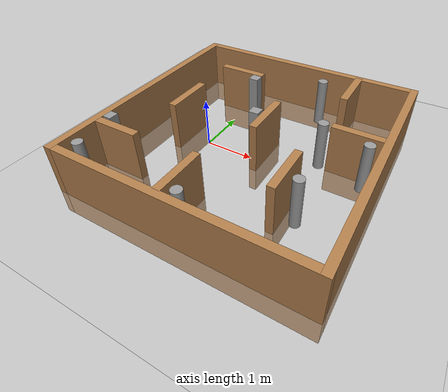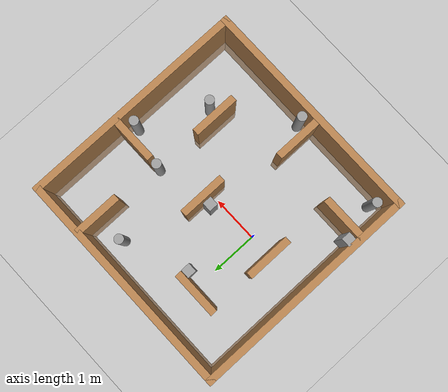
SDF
<sdf version='1.4'>
  <world name='default'>
    <!-- A global light source -->
    <include>
      <uri>model://sun</uri>
    </include>

    <!-- A ground plane -->
    <include>
      <uri>model://ground_plane</uri>
    </include>

    <physics type="ode">
      <real_time_update_rate>1000.0</real_time_update_rate>
      <max_step_size>0.001</max_step_size>
      <real_time_factor>1</real_time_factor>
      <ode>
        <solver>
          <type>quick</type>
          <iters>150</iters>
          <precon_iters>0</precon_iters>
          <sor>1.400000</sor>
          <use_dynamic_moi_rescaling>1</use_dynamic_moi_rescaling>
        </solver>
        <constraints>
          <cfm>0.00001</cfm>
          <erp>0.2</erp>
          <contact_max_correcting_vel>2000.000000</contact_max_correcting_vel>
          <contact_surface_layer>0.01000</contact_surface_layer>
        </constraints>
      </ode>
    </physics>

    <!-- Load world -->
    <include>
      <uri>model://my_plaza_edited</uri>
      <pose>1 0 0 0 0 0</pose>
    </include>

    <scene>
      <ambient>0.4 0.4 0.4 1</ambient>
      <background>0.7 0.7 0.7 1</background>
      <shadows>true</shadows>
    </scene>

    <gui fullscreen='0'>
      <camera name='user_camera'>
        <pose>0.8 0.0 12.0 0 1.5708 0</pose>
        <view_controller>orbit</view_controller>
      </camera>
    </gui>
  </world>
</sdf>

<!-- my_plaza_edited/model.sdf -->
<sdf version='1.7'>
  <model name='my_plaza(edited)'>
    <link name='Wall_0'>
      <pose>-2.425 0 0 0 -0 1.5708</pose>
      <self_collide>0</self_collide>
      <enable_wind>0</enable_wind>
      <kinematic>0</kinematic>
      <visual name='Wall_0_Visual'>
        <pose>0 0 0.25 0 -0 0</pose>
        <geometry>
          <box>
            <size>5 0.15 1.5</size>
          </box>
        </geometry>
        <material>
          <script>
            <uri>file://media/materials/scripts/gazebo.material</uri>
            <name>Gazebo/Wood</name>
          </script>
          <ambient>1 1 1 1</ambient>
          <shader type='pixel'/>
        </material>
        <transparency>0</transparency>
        <cast_shadows>1</cast_shadows>
      </visual>
      <collision name='Wall_0_Collision'>
        <laser_retro>0</laser_retro>
        <max_contacts>10</max_contacts>
        <pose>0 0 0.25 0 -0 0</pose>
        <geometry>
          <box>
            <size>5 0.15 1.5</size>
          </box>
        </geometry>
        <surface>
          <friction>
            <ode>
              <mu>1</mu>
              <mu2>1</mu2>
              <fdir1>0 0 0</fdir1>
              <slip1>0</slip1>
              <slip2>0</slip2>
            </ode>
            <torsional>
              <coefficient>1</coefficient>
              <patch_radius>0</patch_radius>
              <surface_radius>0</surface_radius>
              <use_patch_radius>1</use_patch_radius>
              <ode>
                <slip>0</slip>
              </ode>
            </torsional>
          </friction>
          <bounce>
            <restitution_coefficient>0</restitution_coefficient>
            <threshold>1e+06</threshold>
          </bounce>
          <contact>
            <collide_without_contact>0</collide_without_contact>
            <collide_without_contact_bitmask>1</collide_without_contact_bitmask>
            <collide_bitmask>1</collide_bitmask>
            <ode>
              <soft_cfm>0</soft_cfm>
              <soft_erp>0.2</soft_erp>
              <kp>1e+13</kp>
              <kd>1</kd>
              <max_vel>0.01</max_vel>
              <min_depth>0</min_depth>
            </ode>
            <bullet>
              <split_impulse>1</split_impulse>
              <split_impulse_penetration_threshold>-0.01</split_impulse_penetration_threshold>
              <soft_cfm>0</soft_cfm>
              <soft_erp>0.2</soft_erp>
              <kp>1e+13</kp>
              <kd>1</kd>
            </bullet>
          </contact>
        </surface>
      </collision>
    </link>
    <link name='Wall_11'>
      <pose>-1.937 -1.467 0 0 -0 0</pose>
      <self_collide>0</self_collide>
      <enable_wind>0</enable_wind>
      <kinematic>0</kinematic>
      <visual name='Wall_11_Visual'>
        <pose>0 0 0.25 0 -0 0</pose>
        <geometry>
          <box>
            <size>1 0.15 1.5</size>
          </box>
        </geometry>
        <material>
          <script>
            <uri>file://media/materials/scripts/gazebo.material</uri>
            <name>Gazebo/Wood</name>
          </script>
          <ambient>1 1 1 1</ambient>
          <shader type='pixel'/>
        </material>
        <transparency>0</transparency>
        <cast_shadows>1</cast_shadows>
      </visual>
      <collision name='Wall_11_Collision'>
        <laser_retro>0</laser_retro>
        <max_contacts>10</max_contacts>
        <pose>0 0 0.25 0 -0 0</pose>
        <geometry>
          <box>
            <size>1 0.15 1.5</size>
          </box>
        </geometry>
        <surface>
          <friction>
            <ode>
              <mu>1</mu>
              <mu2>1</mu2>
              <fdir1>0 0 0</fdir1>
              <slip1>0</slip1>
              <slip2>0</slip2>
            </ode>
            <torsional>
              <coefficient>1</coefficient>
              <patch_radius>0</patch_radius>
              <surface_radius>0</surface_radius>
              <use_patch_radius>1</use_patch_radius>
              <ode>
                <slip>0</slip>
              </ode>
            </torsional>
          </friction>
          <bounce>
            <restitution_coefficient>0</restitution_coefficient>
            <threshold>1e+06</threshold>
          </bounce>
          <contact>
            <collide_without_contact>0</collide_without_contact>
            <collide_without_contact_bitmask>1</collide_without_contact_bitmask>
            <collide_bitmask>1</collide_bitmask>
            <ode>
              <soft_cfm>0</soft_cfm>
              <soft_erp>0.2</soft_erp>
              <kp>1e+13</kp>
              <kd>1</kd>
              <max_vel>0.01</max_vel>
              <min_depth>0</min_depth>
            </ode>
            <bullet>
              <split_impulse>1</split_impulse>
              <split_impulse_penetration_threshold>-0.01</split_impulse_penetration_threshold>
              <soft_cfm>0</soft_cfm>
              <soft_erp>0.2</soft_erp>
              <kp>1e+13</kp>
              <kd>1</kd>
            </bullet>
          </contact>
        </surface>
      </collision>
    </link>
    <link name='Wall_13'>
      <pose>-0.22 -1.866 0 0 0 -1.5708</pose>
      <self_collide>0</self_collide>
      <enable_wind>0</enable_wind>
      <kinematic>0</kinematic>
      <visual name='Wall_13_Visual'>
        <pose>0 0 0.25 0 -0 0</pose>
        <geometry>
          <box>
            <size>1 0.15 1.5</size>
          </box>
        </geometry>
        <material>
          <script>
            <uri>file://media/materials/scripts/gazebo.material</uri>
            <name>Gazebo/Wood</name>
          </script>
          <ambient>1 1 1 1</ambient>
          <shader type='pixel'/>
        </material>
        <transparency>0</transparency>
        <cast_shadows>1</cast_shadows>
      </visual>
      <collision name='Wall_13_Collision'>
        <laser_retro>0</laser_retro>
        <max_contacts>10</max_contacts>
        <pose>0 0 0.25 0 -0 0</pose>
        <geometry>
          <box>
            <size>1 0.15 1.5</size>
          </box>
        </geometry>
        <surface>
          <friction>
            <ode>
              <mu>1</mu>
              <mu2>1</mu2>
              <fdir1>0 0 0</fdir1>
              <slip1>0</slip1>
              <slip2>0</slip2>
            </ode>
            <torsional>
              <coefficient>1</coefficient>
              <patch_radius>0</patch_radius>
              <surface_radius>0</surface_radius>
              <use_patch_radius>1</use_patch_radius>
              <ode>
                <slip>0</slip>
              </ode>
            </torsional>
          </friction>
          <bounce>
            <restitution_coefficient>0</restitution_coefficient>
            <threshold>1e+06</threshold>
          </bounce>
          <contact>
            <collide_without_contact>0</collide_without_contact>
            <collide_without_contact_bitmask>1</collide_without_contact_bitmask>
            <collide_bitmask>1</collide_bitmask>
            <ode>
              <soft_cfm>0</soft_cfm>
              <soft_erp>0.2</soft_erp>
              <kp>1e+13</kp>
              <kd>1</kd>
              <max_vel>0.01</max_vel>
              <min_depth>0</min_depth>
            </ode>
            <bullet>
              <split_impulse>1</split_impulse>
              <split_impulse_penetration_threshold>-0.01</split_impulse_penetration_threshold>
              <soft_cfm>0</soft_cfm>
              <soft_erp>0.2</soft_erp>
              <kp>1e+13</kp>
              <kd>1</kd>
            </bullet>
          </contact>
        </surface>
      </collision>
    </link>
    <link name='Wall_15'>
      <pose>1.195 -1.002 0 0 -0 1.5708</pose>
      <self_collide>0</self_collide>
      <enable_wind>0</enable_wind>
      <kinematic>0</kinematic>
      <visual name='Wall_15_Visual'>
        <pose>0 0 0.25 0 -0 0</pose>
        <geometry>
          <box>
            <size>1 0.15 1.5</size>
          </box>
        </geometry>
        <material>
          <script>
            <uri>file://media/materials/scripts/gazebo.material</uri>
            <name>Gazebo/Wood</name>
          </script>
          <ambient>1 1 1 1</ambient>
          <shader type='pixel'/>
        </material>
        <transparency>0</transparency>
        <cast_shadows>1</cast_shadows>
      </visual>
      <collision name='Wall_15_Collision'>
        <laser_retro>0</laser_retro>
        <max_contacts>10</max_contacts>
        <pose>0 0 0.25 0 -0 0</pose>
        <geometry>
          <box>
            <size>1 0.15 1.5</size>
          </box>
        </geometry>
        <surface>
          <friction>
            <ode>
              <mu>1</mu>
              <mu2>1</mu2>
              <fdir1>0 0 0</fdir1>
              <slip1>0</slip1>
              <slip2>0</slip2>
            </ode>
            <torsional>
              <coefficient>1</coefficient>
              <patch_radius>0</patch_radius>
              <surface_radius>0</surface_radius>
              <use_patch_radius>1</use_patch_radius>
              <ode>
                <slip>0</slip>
              </ode>
            </torsional>
          </friction>
          <bounce>
            <restitution_coefficient>0</restitution_coefficient>
            <threshold>1e+06</threshold>
          </bounce>
          <contact>
            <collide_without_contact>0</collide_without_contact>
            <collide_without_contact_bitmask>1</collide_without_contact_bitmask>
            <collide_bitmask>1</collide_bitmask>
            <ode>
              <soft_cfm>0</soft_cfm>
              <soft_erp>0.2</soft_erp>
              <kp>1e+13</kp>
              <kd>1</kd>
              <max_vel>0.01</max_vel>
              <min_depth>0</min_depth>
            </ode>
            <bullet>
              <split_impulse>1</split_impulse>
              <split_impulse_penetration_threshold>-0.01</split_impulse_penetration_threshold>
              <soft_cfm>0</soft_cfm>
              <soft_erp>0.2</soft_erp>
              <kp>1e+13</kp>
              <kd>1</kd>
            </bullet>
          </contact>
        </surface>
      </collision>
    </link>
    <link name='Wall_17'>
      <pose>1.288 1.93 0 0 0 -1.5708</pose>
      <self_collide>0</self_collide>
      <enable_wind>0</enable_wind>
      <kinematic>0</kinematic>
      <visual name='Wall_17_Visual'>
        <pose>0 0 0.25 0 -0 0</pose>
        <geometry>
          <box>
            <size>1 0.15 1.5</size>
          </box>
        </geometry>
        <material>
          <script>
            <uri>file://media/materials/scripts/gazebo.material</uri>
            <name>Gazebo/Wood</name>
          </script>
          <ambient>1 1 1 1</ambient>
          <shader type='pixel'/>
        </material>
        <transparency>0</transparency>
        <cast_shadows>1</cast_shadows>
      </visual>
      <collision name='Wall_17_Collision'>
        <laser_retro>0</laser_retro>
        <max_contacts>10</max_contacts>
        <pose>0 0 0.25 0 -0 0</pose>
        <geometry>
          <box>
            <size>1 0.15 1.5</size>
          </box>
        </geometry>
        <surface>
          <friction>
            <ode>
              <mu>1</mu>
              <mu2>1</mu2>
              <fdir1>0 0 0</fdir1>
              <slip1>0</slip1>
              <slip2>0</slip2>
            </ode>
            <torsional>
              <coefficient>1</coefficient>
              <patch_radius>0</patch_radius>
              <surface_radius>0</surface_radius>
              <use_patch_radius>1</use_patch_radius>
              <ode>
                <slip>0</slip>
              </ode>
            </torsional>
          </friction>
          <bounce>
            <restitution_coefficient>0</restitution_coefficient>
            <threshold>1e+06</threshold>
          </bounce>
          <contact>
            <collide_without_contact>0</collide_without_contact>
            <collide_without_contact_bitmask>1</collide_without_contact_bitmask>
            <collide_bitmask>1</collide_bitmask>
            <ode>
              <soft_cfm>0</soft_cfm>
              <soft_erp>0.2</soft_erp>
              <kp>1e+13</kp>
              <kd>1</kd>
              <max_vel>0.01</max_vel>
              <min_depth>0</min_depth>
            </ode>
            <bullet>
              <split_impulse>1</split_impulse>
              <split_impulse_penetration_threshold>-0.01</split_impulse_penetration_threshold>
              <soft_cfm>0</soft_cfm>
              <soft_erp>0.2</soft_erp>
              <kp>1e+13</kp>
              <kd>1</kd>
            </bullet>
          </contact>
        </surface>
      </collision>
    </link>
    <link name='Wall_19'>
      <pose>1.91128 0.4632 0 0 -0 0</pose>
      <self_collide>0</self_collide>
      <enable_wind>0</enable_wind>
      <kinematic>0</kinematic>
      <visual name='Wall_19_Visual'>
        <pose>0 0 0.25 0 -0 0</pose>
        <geometry>
          <box>
            <size>1 0.15 1.5</size>
          </box>
        </geometry>
        <material>
          <script>
            <uri>file://media/materials/scripts/gazebo.material</uri>
            <name>Gazebo/Wood</name>
          </script>
          <ambient>1 1 1 1</ambient>
          <shader type='pixel'/>
        </material>
        <transparency>0</transparency>
        <cast_shadows>1</cast_shadows>
      </visual>
      <collision name='Wall_19_Collision'>
        <laser_retro>0</laser_retro>
        <max_contacts>10</max_contacts>
        <pose>0 0 0.25 0 -0 0</pose>
        <geometry>
          <box>
            <size>1 0.15 1.5</size>
          </box>
        </geometry>
        <surface>
          <friction>
            <ode>
              <mu>1</mu>
              <mu2>1</mu2>
              <fdir1>0 0 0</fdir1>
              <slip1>0</slip1>
              <slip2>0</slip2>
            </ode>
            <torsional>
              <coefficient>1</coefficient>
              <patch_radius>0</patch_radius>
              <surface_radius>0</surface_radius>
              <use_patch_radius>1</use_patch_radius>
              <ode>
                <slip>0</slip>
              </ode>
            </torsional>
          </friction>
          <bounce>
            <restitution_coefficient>0</restitution_coefficient>
            <threshold>1e+06</threshold>
          </bounce>
          <contact>
            <collide_without_contact>0</collide_without_contact>
            <collide_without_contact_bitmask>1</collide_without_contact_bitmask>
            <collide_bitmask>1</collide_bitmask>
            <ode>
              <soft_cfm>0</soft_cfm>
              <soft_erp>0.2</soft_erp>
              <kp>1e+13</kp>
              <kd>1</kd>
              <max_vel>0.01</max_vel>
              <min_depth>0</min_depth>
            </ode>
            <bullet>
              <split_impulse>1</split_impulse>
              <split_impulse_penetration_threshold>-0.01</split_impulse_penetration_threshold>
              <soft_cfm>0</soft_cfm>
              <soft_erp>0.2</soft_erp>
              <kp>1e+13</kp>
              <kd>1</kd>
            </bullet>
          </contact>
        </surface>
      </collision>
    </link>
    <link name='Wall_2'>
      <pose>0 2.425 0 0 -0 0</pose>
      <self_collide>0</self_collide>
      <enable_wind>0</enable_wind>
      <kinematic>0</kinematic>
      <visual name='Wall_2_Visual'>
        <pose>0 0 0.25 0 -0 0</pose>
        <geometry>
          <box>
            <size>5 0.15 1.5</size>
          </box>
        </geometry>
        <material>
          <script>
            <uri>file://media/materials/scripts/gazebo.material</uri>
            <name>Gazebo/Wood</name>
          </script>
          <ambient>1 1 1 1</ambient>
          <shader type='pixel'/>
        </material>
        <transparency>0</transparency>
        <cast_shadows>1</cast_shadows>
      </visual>
      <collision name='Wall_2_Collision'>
        <laser_retro>0</laser_retro>
        <max_contacts>10</max_contacts>
        <pose>0 0 0.25 0 -0 0</pose>
        <geometry>
          <box>
            <size>5 0.15 1.5</size>
          </box>
        </geometry>
        <surface>
          <friction>
            <ode>
              <mu>1</mu>
              <mu2>1</mu2>
              <fdir1>0 0 0</fdir1>
              <slip1>0</slip1>
              <slip2>0</slip2>
            </ode>
            <torsional>
              <coefficient>1</coefficient>
              <patch_radius>0</patch_radius>
              <surface_radius>0</surface_radius>
              <use_patch_radius>1</use_patch_radius>
              <ode>
                <slip>0</slip>
              </ode>
            </torsional>
          </friction>
          <bounce>
            <restitution_coefficient>0</restitution_coefficient>
            <threshold>1e+06</threshold>
          </bounce>
          <contact>
            <collide_without_contact>0</collide_without_contact>
            <collide_without_contact_bitmask>1</collide_without_contact_bitmask>
            <collide_bitmask>1</collide_bitmask>
            <ode>
              <soft_cfm>0</soft_cfm>
              <soft_erp>0.2</soft_erp>
              <kp>1e+13</kp>
              <kd>1</kd>
              <max_vel>0.01</max_vel>
              <min_depth>0</min_depth>
            </ode>
            <bullet>
              <split_impulse>1</split_impulse>
              <split_impulse_penetration_threshold>-0.01</split_impulse_penetration_threshold>
              <soft_cfm>0</soft_cfm>
              <soft_erp>0.2</soft_erp>
              <kp>1e+13</kp>
              <kd>1</kd>
            </bullet>
          </contact>
        </surface>
      </collision>
    </link>
    <link name='Wall_21'>
      <pose>0.204 0.215 0 0 0 -1.5708</pose>
      <self_collide>0</self_collide>
      <enable_wind>0</enable_wind>
      <kinematic>0</kinematic>
      <visual name='Wall_21_Visual'>
        <pose>0 0 0.25 0 -0 0</pose>
        <geometry>
          <box>
            <size>1 0.15 1.5</size>
          </box>
        </geometry>
        <material>
          <script>
            <uri>file://media/materials/scripts/gazebo.material</uri>
            <name>Gazebo/Wood</name>
          </script>
          <ambient>1 1 1 1</ambient>
          <shader type='pixel'/>
        </material>
        <transparency>0</transparency>
        <cast_shadows>1</cast_shadows>
      </visual>
      <collision name='Wall_21_Collision'>
        <laser_retro>0</laser_retro>
        <max_contacts>10</max_contacts>
        <pose>0 0 0.25 0 -0 0</pose>
        <geometry>
          <box>
            <size>1 0.15 1.5</size>
          </box>
        </geometry>
        <surface>
          <friction>
            <ode>
              <mu>1</mu>
              <mu2>1</mu2>
              <fdir1>0 0 0</fdir1>
              <slip1>0</slip1>
              <slip2>0</slip2>
            </ode>
            <torsional>
              <coefficient>1</coefficient>
              <patch_radius>0</patch_radius>
              <surface_radius>0</surface_radius>
              <use_patch_radius>1</use_patch_radius>
              <ode>
                <slip>0</slip>
              </ode>
            </torsional>
          </friction>
          <bounce>
            <restitution_coefficient>0</restitution_coefficient>
            <threshold>1e+06</threshold>
          </bounce>
          <contact>
            <collide_without_contact>0</collide_without_contact>
            <collide_without_contact_bitmask>1</collide_without_contact_bitmask>
            <collide_bitmask>1</collide_bitmask>
            <ode>
              <soft_cfm>0</soft_cfm>
              <soft_erp>0.2</soft_erp>
              <kp>1e+13</kp>
              <kd>1</kd>
              <max_vel>0.01</max_vel>
              <min_depth>0</min_depth>
            </ode>
            <bullet>
              <split_impulse>1</split_impulse>
              <split_impulse_penetration_threshold>-0.01</split_impulse_penetration_threshold>
              <soft_cfm>0</soft_cfm>
              <soft_erp>0.2</soft_erp>
              <kp>1e+13</kp>
              <kd>1</kd>
            </bullet>
          </contact>
        </surface>
      </collision>
    </link>
    <link name='Wall_3'>
      <pose>2.425 0 0 0 0 -1.5708</pose>
      <self_collide>0</self_collide>
      <enable_wind>0</enable_wind>
      <kinematic>0</kinematic>
      <visual name='Wall_3_Visual'>
        <pose>0 0 0.25 0 -0 0</pose>
        <geometry>
          <box>
            <size>5 0.15 1.5</size>
          </box>
        </geometry>
        <material>
          <script>
            <uri>file://media/materials/scripts/gazebo.material</uri>
            <name>Gazebo/Wood</name>
          </script>
          <ambient>1 1 1 1</ambient>
          <shader type='pixel'/>
        </material>
        <transparency>0</transparency>
        <cast_shadows>1</cast_shadows>
      </visual>
      <collision name='Wall_3_Collision'>
        <laser_retro>0</laser_retro>
        <max_contacts>10</max_contacts>
        <pose>0 0 0.25 0 -0 0</pose>
        <geometry>
          <box>
            <size>5 0.15 1.5</size>
          </box>
        </geometry>
        <surface>
          <friction>
            <ode>
              <mu>1</mu>
              <mu2>1</mu2>
              <fdir1>0 0 0</fdir1>
              <slip1>0</slip1>
              <slip2>0</slip2>
            </ode>
            <torsional>
              <coefficient>1</coefficient>
              <patch_radius>0</patch_radius>
              <surface_radius>0</surface_radius>
              <use_patch_radius>1</use_patch_radius>
              <ode>
                <slip>0</slip>
              </ode>
            </torsional>
          </friction>
          <bounce>
            <restitution_coefficient>0</restitution_coefficient>
            <threshold>1e+06</threshold>
          </bounce>
          <contact>
            <collide_without_contact>0</collide_without_contact>
            <collide_without_contact_bitmask>1</collide_without_contact_bitmask>
            <collide_bitmask>1</collide_bitmask>
            <ode>
              <soft_cfm>0</soft_cfm>
              <soft_erp>0.2</soft_erp>
              <kp>1e+13</kp>
              <kd>1</kd>
              <max_vel>0.01</max_vel>
              <min_depth>0</min_depth>
            </ode>
            <bullet>
              <split_impulse>1</split_impulse>
              <split_impulse_penetration_threshold>-0.01</split_impulse_penetration_threshold>
              <soft_cfm>0</soft_cfm>
              <soft_erp>0.2</soft_erp>
              <kp>1e+13</kp>
              <kd>1</kd>
            </bullet>
          </contact>
        </surface>
      </collision>
    </link>
    <link name='Wall_4'>
      <pose>0 -2.425 0 0 -0 3.14159</pose>
      <self_collide>0</self_collide>
      <enable_wind>0</enable_wind>
      <kinematic>0</kinematic>
      <visual name='Wall_4_Visual'>
        <pose>0 0 0.25 0 -0 0</pose>
        <geometry>
          <box>
            <size>5 0.15 1.5</size>
          </box>
        </geometry>
        <material>
          <script>
            <uri>file://media/materials/scripts/gazebo.material</uri>
            <name>Gazebo/Wood</name>
          </script>
          <ambient>1 1 1 1</ambient>
          <shader type='pixel'/>
        </material>
        <transparency>0</transparency>
        <cast_shadows>1</cast_shadows>
      </visual>
      <collision name='Wall_4_Collision'>
        <laser_retro>0</laser_retro>
        <max_contacts>10</max_contacts>
        <pose>0 0 0.25 0 -0 0</pose>
        <geometry>
          <box>
            <size>5 0.15 1.5</size>
          </box>
        </geometry>
        <surface>
          <friction>
            <ode>
              <mu>1</mu>
              <mu2>1</mu2>
              <fdir1>0 0 0</fdir1>
              <slip1>0</slip1>
              <slip2>0</slip2>
            </ode>
            <torsional>
              <coefficient>1</coefficient>
              <patch_radius>0</patch_radius>
              <surface_radius>0</surface_radius>
              <use_patch_radius>1</use_patch_radius>
              <ode>
                <slip>0</slip>
              </ode>
            </torsional>
          </friction>
          <bounce>
            <restitution_coefficient>0</restitution_coefficient>
            <threshold>1e+06</threshold>
          </bounce>
          <contact>
            <collide_without_contact>0</collide_without_contact>
            <collide_without_contact_bitmask>1</collide_without_contact_bitmask>
            <collide_bitmask>1</collide_bitmask>
            <ode>
              <soft_cfm>0</soft_cfm>
              <soft_erp>0.2</soft_erp>
              <kp>1e+13</kp>
              <kd>1</kd>
              <max_vel>0.01</max_vel>
              <min_depth>0</min_depth>
            </ode>
            <bullet>
              <split_impulse>1</split_impulse>
              <split_impulse_penetration_threshold>-0.01</split_impulse_penetration_threshold>
              <soft_cfm>0</soft_cfm>
              <soft_erp>0.2</soft_erp>
              <kp>1e+13</kp>
              <kd>1</kd>
            </bullet>
          </contact>
        </surface>
      </collision>
    </link>
    <link name='Wall_7'>
      <pose>-1.064 1.548 0 0 -0 0</pose>
      <self_collide>0</self_collide>
      <enable_wind>0</enable_wind>
      <kinematic>0</kinematic>
      <visual name='Wall_7_Visual'>
        <pose>0 0 0.25 0 -0 0</pose>
        <geometry>
          <box>
            <size>1 0.15 1.5</size>
          </box>
        </geometry>
        <material>
          <script>
            <uri>file://media/materials/scripts/gazebo.material</uri>
            <name>Gazebo/Wood</name>
          </script>
          <ambient>1 1 1 1</ambient>
          <shader type='pixel'/>
        </material>
        <transparency>0</transparency>
        <cast_shadows>1</cast_shadows>
      </visual>
      <collision name='Wall_7_Collision'>
        <laser_retro>0</laser_retro>
        <max_contacts>10</max_contacts>
        <pose>0 0 0.25 0 -0 0</pose>
        <geometry>
          <box>
            <size>1 0.15 1.5</size>
          </box>
        </geometry>
        <surface>
          <friction>
            <ode>
              <mu>1</mu>
              <mu2>1</mu2>
              <fdir1>0 0 0</fdir1>
              <slip1>0</slip1>
              <slip2>0</slip2>
            </ode>
            <torsional>
              <coefficient>1</coefficient>
              <patch_radius>0</patch_radius>
              <surface_radius>0</surface_radius>
              <use_patch_radius>1</use_patch_radius>
              <ode>
                <slip>0</slip>
              </ode>
            </torsional>
          </friction>
          <bounce>
            <restitution_coefficient>0</restitution_coefficient>
            <threshold>1e+06</threshold>
          </bounce>
          <contact>
            <collide_without_contact>0</collide_without_contact>
            <collide_without_contact_bitmask>1</collide_without_contact_bitmask>
            <collide_bitmask>1</collide_bitmask>
            <ode>
              <soft_cfm>0</soft_cfm>
              <soft_erp>0.2</soft_erp>
              <kp>1e+13</kp>
              <kd>1</kd>
              <max_vel>0.01</max_vel>
              <min_depth>0</min_depth>
            </ode>
            <bullet>
              <split_impulse>1</split_impulse>
              <split_impulse_penetration_threshold>-0.01</split_impulse_penetration_threshold>
              <soft_cfm>0</soft_cfm>
              <soft_erp>0.2</soft_erp>
              <kp>1e+13</kp>
              <kd>1</kd>
            </bullet>
          </contact>
        </surface>
      </collision>
    </link>
    <link name='Wall_9'>
      <pose>-1.502 0.092 0 0 0 -1.5708</pose>
      <self_collide>0</self_collide>
      <enable_wind>0</enable_wind>
      <kinematic>0</kinematic>
      <visual name='Wall_9_Visual'>
        <pose>0 0 0.25 0 -0 0</pose>
        <geometry>
          <box>
            <size>1 0.15 1.5</size>
          </box>
        </geometry>
        <material>
          <script>
            <uri>file://media/materials/scripts/gazebo.material</uri>
            <name>Gazebo/Wood</name>
          </script>
          <ambient>1 1 1 1</ambient>
          <shader type='pixel'/>
        </material>
        <transparency>0</transparency>
        <cast_shadows>1</cast_shadows>
      </visual>
      <collision name='Wall_9_Collision'>
        <laser_retro>0</laser_retro>
        <max_contacts>10</max_contacts>
        <pose>0 0 0.25 0 -0 0</pose>
        <geometry>
          <box>
            <size>1 0.15 1.5</size>
          </box>
        </geometry>
        <surface>
          <friction>
            <ode>
              <mu>1</mu>
              <mu2>1</mu2>
              <fdir1>0 0 0</fdir1>
              <slip1>0</slip1>
              <slip2>0</slip2>
            </ode>
            <torsional>
              <coefficient>1</coefficient>
              <patch_radius>0</patch_radius>
              <surface_radius>0</surface_radius>
              <use_patch_radius>1</use_patch_radius>
              <ode>
                <slip>0</slip>
              </ode>
            </torsional>
          </friction>
          <bounce>
            <restitution_coefficient>0</restitution_coefficient>
            <threshold>1e+06</threshold>
          </bounce>
          <contact>
            <collide_without_contact>0</collide_without_contact>
            <collide_without_contact_bitmask>1</collide_without_contact_bitmask>
            <collide_bitmask>1</collide_bitmask>
            <ode>
              <soft_cfm>0</soft_cfm>
              <soft_erp>0.2</soft_erp>
              <kp>1e+13</kp>
              <kd>1</kd>
              <max_vel>0.01</max_vel>
              <min_depth>0</min_depth>
            </ode>
            <bullet>
              <split_impulse>1</split_impulse>
              <split_impulse_penetration_threshold>-0.01</split_impulse_penetration_threshold>
              <soft_cfm>0</soft_cfm>
              <soft_erp>0.2</soft_erp>
              <kp>1e+13</kp>
              <kd>1</kd>
            </bullet>
          </contact>
        </surface>
      </collision>
    </link>
    <link name='link_0'>
      <inertial>
        <mass>1</mass>
        <inertia>
          <ixx>0.145833</ixx>
          <ixy>0</ixy>
          <ixz>0</ixz>
          <iyy>0.145833</iyy>
          <iyz>0</iyz>
          <izz>0.125</izz>
        </inertia>
        <pose>0 0 0 0 -0 0</pose>
      </inertial>
      <pose>0.667093 1.92995 0.5 0 -0 0</pose>
      <gravity>1</gravity>
      <self_collide>0</self_collide>
      <kinematic>0</kinematic>
      <enable_wind>0</enable_wind>
      <visual name='visual'>
        <pose>0 0 0 0 -0 0</pose>
        <geometry>
          <cylinder>
            <radius>0.1</radius>
            <length>1</length>
          </cylinder>
        </geometry>
        <material>
          <lighting>1</lighting>
          <script>
            <uri>file://media/materials/scripts/gazebo.material</uri>
            <name>Gazebo/Grey</name>
          </script>
          <shader type='pixel'>
            <normal_map>__default__</normal_map>
          </shader>
          <ambient>0.3 0.3 0.3 1</ambient>
          <diffuse>0.7 0.7 0.7 1</diffuse>
          <specular>0.01 0.01 0.01 1</specular>
          <emissive>0 0 0 1</emissive>
        </material>
        <transparency>0</transparency>
        <cast_shadows>1</cast_shadows>
      </visual>
      <collision name='collision'>
        <laser_retro>0</laser_retro>
        <max_contacts>10</max_contacts>
        <pose>0 0 0 0 -0 0</pose>
        <geometry>
          <cylinder>
            <radius>0.1</radius>
            <length>1</length>
          </cylinder>
        </geometry>
        <surface>
          <friction>
            <ode>
              <mu>1</mu>
              <mu2>1</mu2>
              <fdir1>0 0 0</fdir1>
              <slip1>0</slip1>
              <slip2>0</slip2>
            </ode>
            <torsional>
              <coefficient>1</coefficient>
              <patch_radius>0</patch_radius>
              <surface_radius>0</surface_radius>
              <use_patch_radius>1</use_patch_radius>
              <ode>
                <slip>0</slip>
              </ode>
            </torsional>
          </friction>
          <bounce>
            <restitution_coefficient>0</restitution_coefficient>
            <threshold>1e+06</threshold>
          </bounce>
          <contact>
            <collide_without_contact>0</collide_without_contact>
            <collide_without_contact_bitmask>1</collide_without_contact_bitmask>
            <collide_bitmask>1</collide_bitmask>
            <ode>
              <soft_cfm>0</soft_cfm>
              <soft_erp>0.2</soft_erp>
              <kp>1e+13</kp>
              <kd>1</kd>
              <max_vel>0.01</max_vel>
              <min_depth>0</min_depth>
            </ode>
            <bullet>
              <split_impulse>1</split_impulse>
              <split_impulse_penetration_threshold>-0.01</split_impulse_penetration_threshold>
              <soft_cfm>0</soft_cfm>
              <soft_erp>0.2</soft_erp>
              <kp>1e+13</kp>
              <kd>1</kd>
            </bullet>
          </contact>
        </surface>
      </collision>
    </link>
    <link name='link_0_clone'>
      <inertial>
        <mass>1</mass>
        <inertia>
          <ixx>0.145833</ixx>
          <ixy>0</ixy>
          <ixz>0</ixz>
          <iyy>0.145833</iyy>
          <iyz>0</iyz>
          <izz>0.125</izz>
        </inertia>
        <pose>0 0 0 0 -0 0</pose>
      </inertial>
      <pose>1.25075 0.451285 0.5 0 -0 0</pose>
      <gravity>1</gravity>
      <self_collide>0</self_collide>
      <kinematic>0</kinematic>
      <enable_wind>0</enable_wind>
      <visual name='visual'>
        <pose>0 0 0 0 -0 0</pose>
        <geometry>
          <cylinder>
            <radius>0.1</radius>
            <length>1</length>
          </cylinder>
        </geometry>
        <material>
          <lighting>1</lighting>
          <script>
            <uri>file://media/materials/scripts/gazebo.material</uri>
            <name>Gazebo/Grey</name>
          </script>
          <shader type='pixel'>
            <normal_map>__default__</normal_map>
          </shader>
          <ambient>0.3 0.3 0.3 1</ambient>
          <diffuse>0.7 0.7 0.7 1</diffuse>
          <specular>0.01 0.01 0.01 1</specular>
          <emissive>0 0 0 1</emissive>
        </material>
        <transparency>0</transparency>
        <cast_shadows>1</cast_shadows>
      </visual>
      <collision name='collision'>
        <laser_retro>0</laser_retro>
        <max_contacts>10</max_contacts>
        <pose>0 0 0 0 -0 0</pose>
        <geometry>
          <cylinder>
            <radius>0.1</radius>
            <length>1</length>
          </cylinder>
        </geometry>
        <surface>
          <friction>
            <ode>
              <mu>1</mu>
              <mu2>1</mu2>
              <fdir1>0 0 0</fdir1>
              <slip1>0</slip1>
              <slip2>0</slip2>
            </ode>
            <torsional>
              <coefficient>1</coefficient>
              <patch_radius>0</patch_radius>
              <surface_radius>0</surface_radius>
              <use_patch_radius>1</use_patch_radius>
              <ode>
                <slip>0</slip>
              </ode>
            </torsional>
          </friction>
          <bounce>
            <restitution_coefficient>0</restitution_coefficient>
            <threshold>1e+06</threshold>
          </bounce>
          <contact>
            <collide_without_contact>0</collide_without_contact>
            <collide_without_contact_bitmask>1</collide_without_contact_bitmask>
            <collide_bitmask>1</collide_bitmask>
            <ode>
              <soft_cfm>0</soft_cfm>
              <soft_erp>0.2</soft_erp>
              <kp>1e+13</kp>
              <kd>1</kd>
              <max_vel>0.01</max_vel>
              <min_depth>0</min_depth>
            </ode>
            <bullet>
              <split_impulse>1</split_impulse>
              <split_impulse_penetration_threshold>-0.01</split_impulse_penetration_threshold>
              <soft_cfm>0</soft_cfm>
              <soft_erp>0.2</soft_erp>
              <kp>1e+13</kp>
              <kd>1</kd>
            </bullet>
          </contact>
        </surface>
      </collision>
    </link>
    <link name='link_0_clone_0'>
      <inertial>
        <mass>1</mass>
        <inertia>
          <ixx>0.145833</ixx>
          <ixy>0</ixy>
          <ixz>0</ixz>
          <iyy>0.145833</iyy>
          <iyz>0</iyz>
          <izz>0.125</izz>
        </inertia>
        <pose>0 0 0 0 -0 0</pose>
      </inertial>
      <pose>2.16122 0.21056 0.5 0 -0 0</pose>
      <gravity>1</gravity>
      <self_collide>0</self_collide>
      <kinematic>0</kinematic>
      <enable_wind>0</enable_wind>
      <visual name='visual'>
        <pose>0 0 0 0 -0 0</pose>
        <geometry>
          <cylinder>
            <radius>0.1</radius>
            <length>1</length>
          </cylinder>
        </geometry>
        <material>
          <lighting>1</lighting>
          <script>
            <uri>file://media/materials/scripts/gazebo.material</uri>
            <name>Gazebo/Grey</name>
          </script>
          <shader type='pixel'>
            <normal_map>__default__</normal_map>
          </shader>
          <ambient>0.3 0.3 0.3 1</ambient>
          <diffuse>0.7 0.7 0.7 1</diffuse>
          <specular>0.01 0.01 0.01 1</specular>
          <emissive>0 0 0 1</emissive>
        </material>
        <transparency>0</transparency>
        <cast_shadows>1</cast_shadows>
      </visual>
      <collision name='collision'>
        <laser_retro>0</laser_retro>
        <max_contacts>10</max_contacts>
        <pose>0 0 0 0 -0 0</pose>
        <geometry>
          <cylinder>
            <radius>0.1</radius>
            <length>1</length>
          </cylinder>
        </geometry>
        <surface>
          <friction>
            <ode>
              <mu>1</mu>
              <mu2>1</mu2>
              <fdir1>0 0 0</fdir1>
              <slip1>0</slip1>
              <slip2>0</slip2>
            </ode>
            <torsional>
              <coefficient>1</coefficient>
              <patch_radius>0</patch_radius>
              <surface_radius>0</surface_radius>
              <use_patch_radius>1</use_patch_radius>
              <ode>
                <slip>0</slip>
              </ode>
            </torsional>
          </friction>
          <bounce>
            <restitution_coefficient>0</restitution_coefficient>
            <threshold>1e+06</threshold>
          </bounce>
          <contact>
            <collide_without_contact>0</collide_without_contact>
            <collide_without_contact_bitmask>1</collide_without_contact_bitmask>
            <collide_bitmask>1</collide_bitmask>
            <ode>
              <soft_cfm>0</soft_cfm>
              <soft_erp>0.2</soft_erp>
              <kp>1e+13</kp>
              <kd>1</kd>
              <max_vel>0.01</max_vel>
              <min_depth>0</min_depth>
            </ode>
            <bullet>
              <split_impulse>1</split_impulse>
              <split_impulse_penetration_threshold>-0.01</split_impulse_penetration_threshold>
              <soft_cfm>0</soft_cfm>
              <soft_erp>0.2</soft_erp>
              <kp>1e+13</kp>
              <kd>1</kd>
            </bullet>
          </contact>
        </surface>
      </collision>
    </link>
    <link name='link_0_clone_1'>
      <inertial>
        <mass>1</mass>
        <inertia>
          <ixx>0.145833</ixx>
          <ixy>0</ixy>
          <ixz>0</ixz>
          <iyy>0.145833</iyy>
          <iyz>0</iyz>
          <izz>0.125</izz>
        </inertia>
        <pose>0 0 0 0 -0 0</pose>
      </inertial>
      <pose>1.47777 -1.12843 0.5 0 -0 0</pose>
      <gravity>1</gravity>
      <self_collide>0</self_collide>
      <kinematic>0</kinematic>
      <enable_wind>0</enable_wind>
      <visual name='visual'>
        <pose>0 0 0 0 -0 0</pose>
        <geometry>
          <cylinder>
            <radius>0.1</radius>
            <length>1</length>
          </cylinder>
        </geometry>
        <material>
          <lighting>1</lighting>
          <script>
            <uri>file://media/materials/scripts/gazebo.material</uri>
            <name>Gazebo/Grey</name>
          </script>
          <shader type='pixel'>
            <normal_map>__default__</normal_map>
          </shader>
          <ambient>0.3 0.3 0.3 1</ambient>
          <diffuse>0.7 0.7 0.7 1</diffuse>
          <specular>0.01 0.01 0.01 1</specular>
          <emissive>0 0 0 1</emissive>
        </material>
        <transparency>0</transparency>
        <cast_shadows>1</cast_shadows>
      </visual>
      <collision name='collision'>
        <laser_retro>0</laser_retro>
        <max_contacts>10</max_contacts>
        <pose>0 0 0 0 -0 0</pose>
        <geometry>
          <cylinder>
            <radius>0.1</radius>
            <length>1</length>
          </cylinder>
        </geometry>
        <surface>
          <friction>
            <ode>
              <mu>1</mu>
              <mu2>1</mu2>
              <fdir1>0 0 0</fdir1>
              <slip1>0</slip1>
              <slip2>0</slip2>
            </ode>
            <torsional>
              <coefficient>1</coefficient>
              <patch_radius>0</patch_radius>
              <surface_radius>0</surface_radius>
              <use_patch_radius>1</use_patch_radius>
              <ode>
                <slip>0</slip>
              </ode>
            </torsional>
          </friction>
          <bounce>
            <restitution_coefficient>0</restitution_coefficient>
            <threshold>1e+06</threshold>
          </bounce>
          <contact>
            <collide_without_contact>0</collide_without_contact>
            <collide_without_contact_bitmask>1</collide_without_contact_bitmask>
            <collide_bitmask>1</collide_bitmask>
            <ode>
              <soft_cfm>0</soft_cfm>
              <soft_erp>0.2</soft_erp>
              <kp>1e+13</kp>
              <kd>1</kd>
              <max_vel>0.01</max_vel>
              <min_depth>0</min_depth>
            </ode>
            <bullet>
              <split_impulse>1</split_impulse>
              <split_impulse_penetration_threshold>-0.01</split_impulse_penetration_threshold>
              <soft_cfm>0</soft_cfm>
              <soft_erp>0.2</soft_erp>
              <kp>1e+13</kp>
              <kd>1</kd>
            </bullet>
          </contact>
        </surface>
      </collision>
    </link>
    <link name='link_0_clone_2'>
      <inertial>
        <mass>1</mass>
        <inertia>
          <ixx>0.145833</ixx>
          <ixy>0</ixy>
          <ixz>0</ixz>
          <iyy>0.145833</iyy>
          <iyz>0</iyz>
          <izz>0.125</izz>
        </inertia>
        <pose>0 0 0 0 -0 0</pose>
      </inertial>
      <pose>0.039896 -2.21785 0.5 0 -0 0</pose>
      <gravity>1</gravity>
      <self_collide>0</self_collide>
      <kinematic>0</kinematic>
      <enable_wind>0</enable_wind>
      <visual name='visual'>
        <pose>0 0 0 0 -0 0</pose>
        <geometry>
          <cylinder>
            <radius>0.1</radius>
            <length>1</length>
          </cylinder>
        </geometry>
        <material>
          <lighting>1</lighting>
          <script>
            <uri>file://media/materials/scripts/gazebo.material</uri>
            <name>Gazebo/Grey</name>
          </script>
          <shader type='pixel'>
            <normal_map>__default__</normal_map>
          </shader>
          <ambient>0.3 0.3 0.3 1</ambient>
          <diffuse>0.7 0.7 0.7 1</diffuse>
          <specular>0.01 0.01 0.01 1</specular>
          <emissive>0 0 0 1</emissive>
        </material>
        <transparency>0</transparency>
        <cast_shadows>1</cast_shadows>
      </visual>
      <collision name='collision'>
        <laser_retro>0</laser_retro>
        <max_contacts>10</max_contacts>
        <pose>0 0 0 0 -0 0</pose>
        <geometry>
          <cylinder>
            <radius>0.1</radius>
            <length>1</length>
          </cylinder>
        </geometry>
        <surface>
          <friction>
            <ode>
              <mu>1</mu>
              <mu2>1</mu2>
              <fdir1>0 0 0</fdir1>
              <slip1>0</slip1>
              <slip2>0</slip2>
            </ode>
            <torsional>
              <coefficient>1</coefficient>
              <patch_radius>0</patch_radius>
              <surface_radius>0</surface_radius>
              <use_patch_radius>1</use_patch_radius>
              <ode>
                <slip>0</slip>
              </ode>
            </torsional>
          </friction>
          <bounce>
            <restitution_coefficient>0</restitution_coefficient>
            <threshold>1e+06</threshold>
          </bounce>
          <contact>
            <collide_without_contact>0</collide_without_contact>
            <collide_without_contact_bitmask>1</collide_without_contact_bitmask>
            <collide_bitmask>1</collide_bitmask>
            <ode>
              <soft_cfm>0</soft_cfm>
              <soft_erp>0.2</soft_erp>
              <kp>1e+13</kp>
              <kd>1</kd>
              <max_vel>0.01</max_vel>
              <min_depth>0</min_depth>
            </ode>
            <bullet>
              <split_impulse>1</split_impulse>
              <split_impulse_penetration_threshold>-0.01</split_impulse_penetration_threshold>
              <soft_cfm>0</soft_cfm>
              <soft_erp>0.2</soft_erp>
              <kp>1e+13</kp>
              <kd>1</kd>
            </bullet>
          </contact>
        </surface>
      </collision>
    </link>
    <link name='link_0_clone_3'>
      <inertial>
        <mass>1</mass>
        <inertia>
          <ixx>0.145833</ixx>
          <ixy>0</ixy>
          <ixz>0</ixz>
          <iyy>0.145833</iyy>
          <iyz>0</iyz>
          <izz>0.125</izz>
        </inertia>
        <pose>0 0 0 0 -0 0</pose>
      </inertial>
      <pose>-2.12447 -2.12922 0.5 0 -0 0</pose>
      <gravity>1</gravity>
      <self_collide>0</self_collide>
      <kinematic>0</kinematic>
      <enable_wind>0</enable_wind>
      <visual name='visual'>
        <pose>0 0 0 0 -0 0</pose>
        <geometry>
          <cylinder>
            <radius>0.1</radius>
            <length>1</length>
          </cylinder>
        </geometry>
        <material>
          <lighting>1</lighting>
          <script>
            <uri>file://media/materials/scripts/gazebo.material</uri>
            <name>Gazebo/Grey</name>
          </script>
          <shader type='pixel'>
            <normal_map>__default__</normal_map>
          </shader>
          <ambient>0.3 0.3 0.3 1</ambient>
          <diffuse>0.7 0.7 0.7 1</diffuse>
          <specular>0.01 0.01 0.01 1</specular>
          <emissive>0 0 0 1</emissive>
        </material>
        <transparency>0</transparency>
        <cast_shadows>1</cast_shadows>
      </visual>
      <collision name='collision'>
        <laser_retro>0</laser_retro>
        <max_contacts>10</max_contacts>
        <pose>0 0 0 0 -0 0</pose>
        <geometry>
          <cylinder>
            <radius>0.1</radius>
            <length>1</length>
          </cylinder>
        </geometry>
        <surface>
          <friction>
            <ode>
              <mu>1</mu>
              <mu2>1</mu2>
              <fdir1>0 0 0</fdir1>
              <slip1>0</slip1>
              <slip2>0</slip2>
            </ode>
            <torsional>
              <coefficient>1</coefficient>
              <patch_radius>0</patch_radius>
              <surface_radius>0</surface_radius>
              <use_patch_radius>1</use_patch_radius>
              <ode>
                <slip>0</slip>
              </ode>
            </torsional>
          </friction>
          <bounce>
            <restitution_coefficient>0</restitution_coefficient>
            <threshold>1e+06</threshold>
          </bounce>
          <contact>
            <collide_without_contact>0</collide_without_contact>
            <collide_without_contact_bitmask>1</collide_without_contact_bitmask>
            <collide_bitmask>1</collide_bitmask>
            <ode>
              <soft_cfm>0</soft_cfm>
              <soft_erp>0.2</soft_erp>
              <kp>1e+13</kp>
              <kd>1</kd>
              <max_vel>0.01</max_vel>
              <min_depth>0</min_depth>
            </ode>
            <bullet>
              <split_impulse>1</split_impulse>
              <split_impulse_penetration_threshold>-0.01</split_impulse_penetration_threshold>
              <soft_cfm>0</soft_cfm>
              <soft_erp>0.2</soft_erp>
              <kp>1e+13</kp>
              <kd>1</kd>
            </bullet>
          </contact>
        </surface>
      </collision>
    </link>
    <link name='link_2_clone'>
      <inertial>
        <mass>1</mass>
        <inertia>
          <ixx>0.166667</ixx>
          <ixy>0</ixy>
          <ixz>0</ixz>
          <iyy>0.166667</iyy>
          <iyz>0</iyz>
          <izz>0.166667</izz>
        </inertia>
        <pose>0 0 0 0 -0 0</pose>
      </inertial>
      <pose>-2.27275 -1.25465 0.5 0 -0 0</pose>
      <gravity>1</gravity>
      <self_collide>0</self_collide>
      <kinematic>0</kinematic>
      <enable_wind>0</enable_wind>
      <visual name='visual'>
        <pose>0 0 0 0 -0 0</pose>
        <geometry>
          <box>
            <size>0.2 0.2 1</size>
          </box>
        </geometry>
        <material>
          <lighting>1</lighting>
          <script>
            <uri>file://media/materials/scripts/gazebo.material</uri>
            <name>Gazebo/Grey</name>
          </script>
          <shader type='pixel'>
            <normal_map>__default__</normal_map>
          </shader>
          <ambient>0.3 0.3 0.3 1</ambient>
          <diffuse>0.7 0.7 0.7 1</diffuse>
          <specular>0.01 0.01 0.01 1</specular>
          <emissive>0 0 0 1</emissive>
        </material>
        <transparency>0</transparency>
        <cast_shadows>1</cast_shadows>
      </visual>
      <collision name='collision'>
        <laser_retro>0</laser_retro>
        <max_contacts>10</max_contacts>
        <pose>0 0 0 0 -0 0</pose>
        <geometry>
          <box>
            <size>0.2 0.2 1</size>
          </box>
        </geometry>
        <surface>
          <friction>
            <ode>
              <mu>1</mu>
              <mu2>1</mu2>
              <fdir1>0 0 0</fdir1>
              <slip1>0</slip1>
              <slip2>0</slip2>
            </ode>
            <torsional>
              <coefficient>1</coefficient>
              <patch_radius>0</patch_radius>
              <surface_radius>0</surface_radius>
              <use_patch_radius>1</use_patch_radius>
              <ode>
                <slip>0</slip>
              </ode>
            </torsional>
          </friction>
          <bounce>
            <restitution_coefficient>0</restitution_coefficient>
            <threshold>1e+06</threshold>
          </bounce>
          <contact>
            <collide_without_contact>0</collide_without_contact>
            <collide_without_contact_bitmask>1</collide_without_contact_bitmask>
            <collide_bitmask>1</collide_bitmask>
            <ode>
              <soft_cfm>0</soft_cfm>
              <soft_erp>0.2</soft_erp>
              <kp>1e+13</kp>
              <kd>1</kd>
              <max_vel>0.01</max_vel>
              <min_depth>0</min_depth>
            </ode>
            <bullet>
              <split_impulse>1</split_impulse>
              <split_impulse_penetration_threshold>-0.01</split_impulse_penetration_threshold>
              <soft_cfm>0</soft_cfm>
              <soft_erp>0.2</soft_erp>
              <kp>1e+13</kp>
              <kd>1</kd>
            </bullet>
          </contact>
        </surface>
      </collision>
    </link>
    <link name='link_2_clone_0'>
      <inertial>
        <mass>1</mass>
        <inertia>
          <ixx>0.166667</ixx>
          <ixy>0</ixy>
          <ixz>0</ixz>
          <iyy>0.166667</iyy>
          <iyz>0</iyz>
          <izz>0.166667</izz>
        </inertia>
        <pose>0 0 0 0 -0 0</pose>
      </inertial>
      <pose>-0.658015 1.36403 0.5 0 -0 0</pose>
      <gravity>1</gravity>
      <self_collide>0</self_collide>
      <kinematic>0</kinematic>
      <enable_wind>0</enable_wind>
      <visual name='visual'>
        <pose>0 0 0 0 -0 0</pose>
        <geometry>
          <box>
            <size>0.2 0.2 1</size>
          </box>
        </geometry>
        <material>
          <lighting>1</lighting>
          <script>
            <uri>file://media/materials/scripts/gazebo.material</uri>
            <name>Gazebo/Grey</name>
          </script>
          <shader type='pixel'>
            <normal_map>__default__</normal_map>
          </shader>
          <ambient>0.3 0.3 0.3 1</ambient>
          <diffuse>0.7 0.7 0.7 1</diffuse>
          <specular>0.01 0.01 0.01 1</specular>
          <emissive>0 0 0 1</emissive>
        </material>
        <transparency>0</transparency>
        <cast_shadows>1</cast_shadows>
      </visual>
      <collision name='collision'>
        <laser_retro>0</laser_retro>
        <max_contacts>10</max_contacts>
        <pose>0 0 0 0 -0 0</pose>
        <geometry>
          <box>
            <size>0.2 0.2 1</size>
          </box>
        </geometry>
        <surface>
          <friction>
            <ode>
              <mu>1</mu>
              <mu2>1</mu2>
              <fdir1>0 0 0</fdir1>
              <slip1>0</slip1>
              <slip2>0</slip2>
            </ode>
            <torsional>
              <coefficient>1</coefficient>
              <patch_radius>0</patch_radius>
              <surface_radius>0</surface_radius>
              <use_patch_radius>1</use_patch_radius>
              <ode>
                <slip>0</slip>
              </ode>
            </torsional>
          </friction>
          <bounce>
            <restitution_coefficient>0</restitution_coefficient>
            <threshold>1e+06</threshold>
          </bounce>
          <contact>
            <collide_without_contact>0</collide_without_contact>
            <collide_without_contact_bitmask>1</collide_without_contact_bitmask>
            <collide_bitmask>1</collide_bitmask>
            <ode>
              <soft_cfm>0</soft_cfm>
              <soft_erp>0.2</soft_erp>
              <kp>1e+13</kp>
              <kd>1</kd>
              <max_vel>0.01</max_vel>
              <min_depth>0</min_depth>
            </ode>
            <bullet>
              <split_impulse>1</split_impulse>
              <split_impulse_penetration_threshold>-0.01</split_impulse_penetration_threshold>
              <soft_cfm>0</soft_cfm>
              <soft_erp>0.2</soft_erp>
              <kp>1e+13</kp>
              <kd>1</kd>
            </bullet>
          </contact>
        </surface>
      </collision>
    </link>
    <link name='link_2_clone_1'>
      <inertial>
        <mass>1</mass>
        <inertia>
          <ixx>0.166667</ixx>
          <ixy>0</ixy>
          <ixz>0</ixz>
          <iyy>0.166667</iyy>
          <iyz>0</iyz>
          <izz>0.166667</izz>
        </inertia>
        <pose>0 0 0 0 -0 0</pose>
      </inertial>
      <pose>-0.009364 0.215565 0.5 0 -0 0</pose>
      <gravity>1</gravity>
      <self_collide>0</self_collide>
      <kinematic>0</kinematic>
      <enable_wind>0</enable_wind>
      <visual name='visual'>
        <pose>0 0 0 0 -0 0</pose>
        <geometry>
          <box>
            <size>0.2 0.2 1</size>
          </box>
        </geometry>
        <material>
          <lighting>1</lighting>
          <script>
            <uri>file://media/materials/scripts/gazebo.material</uri>
            <name>Gazebo/Grey</name>
          </script>
          <shader type='pixel'>
            <normal_map>__default__</normal_map>
          </shader>
          <ambient>0.3 0.3 0.3 1</ambient>
          <diffuse>0.7 0.7 0.7 1</diffuse>
          <specular>0.01 0.01 0.01 1</specular>
          <emissive>0 0 0 1</emissive>
        </material>
        <transparency>0</transparency>
        <cast_shadows>1</cast_shadows>
      </visual>
      <collision name='collision'>
        <laser_retro>0</laser_retro>
        <max_contacts>10</max_contacts>
        <pose>0 0 0 0 -0 0</pose>
        <geometry>
          <box>
            <size>0.2 0.2 1</size>
          </box>
        </geometry>
        <surface>
          <friction>
            <ode>
              <mu>1</mu>
              <mu2>1</mu2>
              <fdir1>0 0 0</fdir1>
              <slip1>0</slip1>
              <slip2>0</slip2>
            </ode>
            <torsional>
              <coefficient>1</coefficient>
              <patch_radius>0</patch_radius>
              <surface_radius>0</surface_radius>
              <use_patch_radius>1</use_patch_radius>
              <ode>
                <slip>0</slip>
              </ode>
            </torsional>
          </friction>
          <bounce>
            <restitution_coefficient>0</restitution_coefficient>
            <threshold>1e+06</threshold>
          </bounce>
          <contact>
            <collide_without_contact>0</collide_without_contact>
            <collide_without_contact_bitmask>1</collide_without_contact_bitmask>
            <collide_bitmask>1</collide_bitmask>
            <ode>
              <soft_cfm>0</soft_cfm>
              <soft_erp>0.2</soft_erp>
              <kp>1e+13</kp>
              <kd>1</kd>
              <max_vel>0.01</max_vel>
              <min_depth>0</min_depth>
            </ode>
            <bullet>
              <split_impulse>1</split_impulse>
              <split_impulse_penetration_threshold>-0.01</split_impulse_penetration_threshold>
              <soft_cfm>0</soft_cfm>
              <soft_erp>0.2</soft_erp>
              <kp>1e+13</kp>
              <kd>1</kd>
            </bullet>
          </contact>
        </surface>
      </collision>
    </link>
    <static>1</static>
    <allow_auto_disable>1</allow_auto_disable>
  </model>
</sdf>
